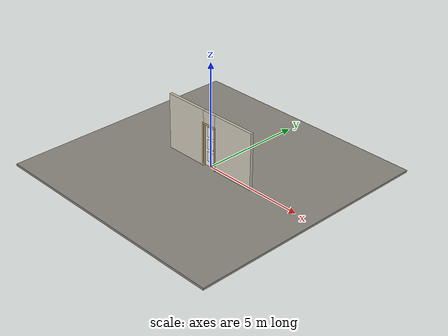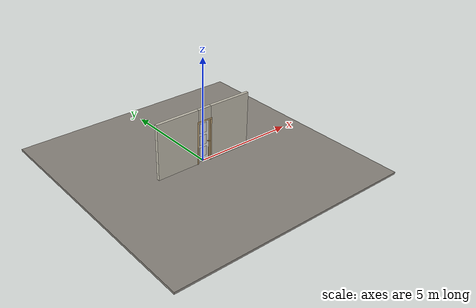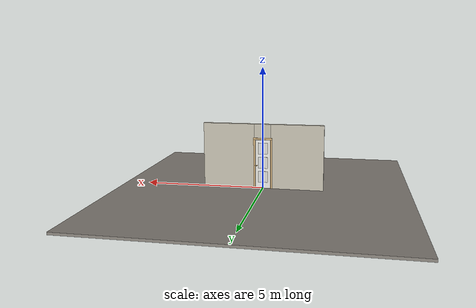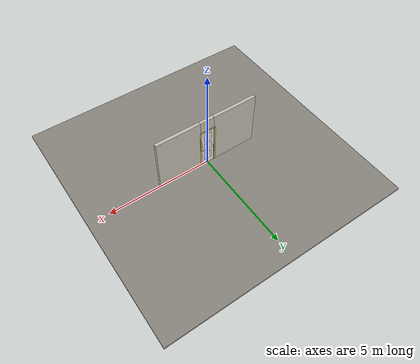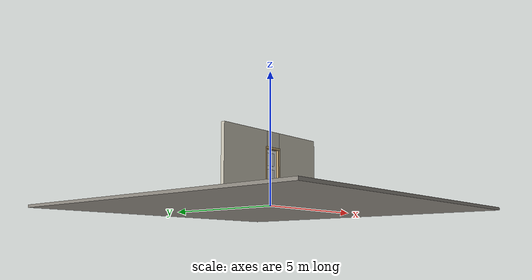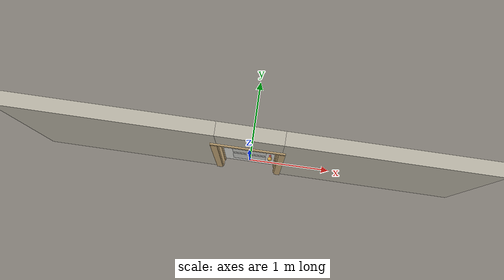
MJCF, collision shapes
<?xml version="1.0" ?>
<mujoco model="db0798_swing_single_full">
  <compiler angle="radian" meshdir="../../hardware" texturedir="../../textures" autolimits="true" inertiafromgeom="false"/>
  <option timestep="0.002" integrator="implicitfast" cone="elliptic" impratio="10" noslip_iterations="3">
    <flag multiccd="enable"/>
  </option>
  <size memory="16M"/>
  <default>
    <geom condim="4" solref="0.005 1" solimp="0.95 0.99 0.001"/>
    <joint solreflimit="0.005 1" solimplimit="0.95 0.99 0.001"/>
    <tendon solreflimit="0.005 1"/>
    <equality solref="0.002 1"/>
  </default>
  <visual>
    <headlight ambient="0.4 0.4 0.4" diffuse="0.7 0.7 0.7" specular="0.2 0.2 0.2"/>
    <quality shadowsize="4096"/>
    <map znear="0.01" zfar="60"/>
  </visual>
  <asset>
    <mesh name="hinge_e3fd49fe13" file="hinge_e3fd49fe13.obj"/>
    <mesh name="hinge_jamb_e47eb19c39" file="hinge_jamb_e47eb19c39.obj"/>
    <mesh name="knob_d1888f6f03" file="knob_d1888f6f03.obj"/>
    <material name="mat_floor" rgba="0.55 0.53 0.5 1" specular="0.2" shininess="0.15" reflectance="0"/>
    <material name="mat_wall" rgba="0.78 0.76 0.7 1" specular="0.2" shininess="0.1" reflectance="0"/>
    <material name="mat_leaf" rgba="0.93 0.93 0.91 1" specular="0.2" shininess="0.39" reflectance="0"/>
    <material name="mat_leaf_panel" rgba="0.856 0.856 0.837 1" specular="0.2" shininess="0.39" reflectance="0"/>
    <material name="mat_hinge" rgba="0.65 0.66 0.68 1" specular="0.74" shininess="0.5" reflectance="0.36"/>
    <material name="mat_op_brass" rgba="0.85 0.66 0.3 1" specular="0.8" shininess="0.75" reflectance="0.4"/>
    <material name="mat_trim" rgba="0.85 0.66 0.3 1" specular="0.8" shininess="0.75" reflectance="0.4"/>
    <material name="mat_bolt" rgba="0.85 0.66 0.3 1" specular="0.8" shininess="0.75" reflectance="0.4"/>
    <material name="mat_frame" rgba="0.82 0.7 0.5 1" specular="0.2" shininess="0.45" reflectance="0"/>
    <texture name="skybox" type="skybox" builtin="gradient" rgb1="0.6 0.7 0.85" rgb2="0.9 0.92 0.95" width="256" height="256"/>
  </asset>
  <worldbody>
    <light name="sun" pos="1.5 -2.5 4" dir="-0.3 0.5 -0.8" directional="true" diffuse="0.8 0.8 0.8" specular="0.3 0.3 0.3" castshadow="true"/>
    <light name="fill" pos="-1.5 2.5 3" dir="0.3 -0.5 -0.7" directional="true" diffuse="0.35 0.35 0.4" castshadow="false"/>
    <camera name="robot_view" pos="0 -2.590187 1.734312" xyaxes="1 0 0 0 0.26963 0.962964" fovy="52"/>
    <camera name="far_view" pos="0 2.494187 1.734312" xyaxes="-1 0 0 0 -0.26963 0.962964" fovy="52"/>
    <camera name="iso" pos="1.932062 -2.183438 2.141063" xyaxes="0.741536 0.670913 0 -0.242917 0.268487 0.932151" fovy="46"/>
    <camera name="detail_handle" pos="0.4245 -0.864 1.245" xyaxes="0.97561 0.219512 0 -0.070934 0.315262 0.94635" fovy="38"/>
    <geom name="floor" type="box" size="6 6 0.05" pos="0 0 -0.05" material="mat_floor" group="0" contype="1" conaffinity="1" friction="0.8 0.005 0.0001" density="2400"/>
    <geom name="wall_left" type="box" size="1.08625 0.0725 1.35" pos="-1.41375 -0.048 1.35" material="mat_wall" group="0" contype="1" conaffinity="1" friction="0.6 0.005 0.0001" density="800"/>
    <geom name="wall_right" type="box" size="1.07125 0.0725 1.35" pos="1.42875 -0.048 1.35" material="mat_wall" group="0" contype="1" conaffinity="1" friction="0.6 0.005 0.0001" density="800"/>
    <geom name="wall_header" type="box" size="0.3425 0.0725 0.303" pos="0.015 -0.048 2.397" material="mat_wall" group="0" contype="1" conaffinity="1" friction="0.6 0.005 0.0001" density="800"/>
    <geom name="hinge_0_jamb" type="mesh" mesh="hinge_jamb_e47eb19c39" pos="-0.3055 0.0245 0.259" quat="0 1 0 0" material="mat_hinge" group="1" contype="0" conaffinity="0" density="7850"/>
    <geom name="hinge_1_jamb" type="mesh" mesh="hinge_jamb_e47eb19c39" pos="-0.3055 0.0245 1.861" quat="0 1 0 0" material="mat_hinge" group="1" contype="0" conaffinity="0" density="7850"/>
    <geom name="jamb_hinge" type="box" size="0.0095 0.0725 1.0225" pos="-0.318 -0.048 1.0225" material="mat_frame" group="0" contype="1" conaffinity="1" friction="0.6 0.005 0.0001" density="400"/>
    <geom name="strike_965_wall_n" type="box" size="0.0245 0.056325 0.0167" pos="0.333 -0.064175 0.965" material="mat_frame" group="0" contype="1" conaffinity="1" friction="0.6 0.005 0.0001" density="400"/>
    <geom name="strike_965_wall_p" type="box" size="0.0245 0.008 0.0167" pos="0.333 0.01585 0.965" material="mat_frame" group="0" contype="1" conaffinity="1" friction="0.6 0.005 0.0001" density="400"/>
    <geom name="strike_965_ramp" type="box" size="0.0245 0.01649 0.0167" pos="0.337636 0.028673 0.965" quat="0.977148 0 0 -0.212558" material="mat_frame" group="0" contype="1" conaffinity="1" friction="0.12 0.005 0.0001" density="400"/>
    <geom name="strike_965_back" type="box" size="0.01615 0.00785 0.0167" pos="0.34135 0 0.965" material="mat_frame" group="0" contype="1" conaffinity="1" friction="0.6 0.005 0.0001" density="400"/>
    <geom name="jamb_strike_0" type="box" size="0.0245 0.0725 0.47415" pos="0.333 -0.048 0.47415" material="mat_frame" group="0" contype="1" conaffinity="1" friction="0.6 0.005 0.0001" density="400"/>
    <geom name="jamb_strike_1" type="box" size="0.0245 0.0725 0.53165" pos="0.333 -0.048 1.51335" material="mat_frame" group="0" contype="1" conaffinity="1" friction="0.6 0.005 0.0001" density="400"/>
    <geom name="jamb_head" type="box" size="0.3425 0.0725 0.0095" pos="0.015 -0.048 2.0545" material="mat_frame" group="0" contype="1" conaffinity="1" friction="0.6 0.005 0.0001" density="400"/>
    <geom name="head_stud" type="box" size="0.3425 0.0725 0.015" pos="0.015 -0.048 2.079" material="mat_wall" group="0" contype="1" conaffinity="1" friction="0.6 0.005 0.0001" density="500"/>
    <geom name="stop_hinge" type="box" size="0.0055 0.016 1.0225" pos="-0.303 -0.034 1.0225" material="mat_frame" group="0" contype="1" conaffinity="1" friction="0.6 0.005 0.0001" density="400"/>
    <geom name="stop_strike" type="box" size="0.0055 0.016 1.0225" pos="0.303 -0.034 1.0225" material="mat_frame" group="0" contype="1" conaffinity="1" friction="0.6 0.005 0.0001" density="400"/>
    <geom name="stop_head" type="box" size="0.3085 0.016 0.0055" pos="0 -0.034 2.0395" material="mat_frame" group="0" contype="1" conaffinity="1" friction="0.6 0.005 0.0001" density="400"/>
    <geom name="casing_l_n" type="box" size="0.035 0.008 1.032" pos="-0.3575 -0.1285 1.0225" material="mat_frame" group="2" contype="0" conaffinity="0" density="400"/>
    <geom name="casing_r_n" type="box" size="0.035 0.008 1.032" pos="0.3575 -0.1285 1.0225" material="mat_frame" group="2" contype="0" conaffinity="0" density="400"/>
    <geom name="casing_h_n" type="box" size="0.3925 0.008 0.035" pos="0 -0.1285 2.094" material="mat_frame" group="2" contype="0" conaffinity="0" density="400"/>
    <geom name="casing_l_p" type="box" size="0.035 0.008 1.032" pos="-0.3575 0.0325 1.0225" material="mat_frame" group="2" contype="0" conaffinity="0" density="400"/>
    <geom name="casing_r_p" type="box" size="0.035 0.008 1.032" pos="0.3575 0.0325 1.0225" material="mat_frame" group="2" contype="0" conaffinity="0" density="400"/>
    <geom name="casing_h_p" type="box" size="0.3925 0.008 0.035" pos="0 0.0325 2.094" material="mat_frame" group="2" contype="0" conaffinity="0" density="400"/>
    <site name="approach_point" pos="0 -1.5 0" quat="1 0 0 0" size="0.05" rgba="0.2 0.9 0.2 0.5" group="4"/>
    <site name="goal_point" pos="0 1.5 0" quat="1 0 0 0" size="0.05" rgba="0.2 0.9 0.2 0.5" group="4"/>
    <site name="door_plane_center" pos="0 0 1.0225" quat="1 0 0 0" size="0.02" rgba="0.2 0.9 0.2 0.5" group="4"/>
    <body name="leaf" pos="-0.3085 0 0">
      <inertial pos="0.294203 0.000774 1.026587" mass="9.081519" quat="0.501299 0.497918 -0.502042 0.498729" diaginertia="0.307991601 3.24771842 3.553615961"/>
      <joint name="leaf_hinge" type="hinge" axis="0 0 1" pos="0.003 0.0245 0" limited="true" range="0 1.745329" damping="0.100811" frictionloss="0.14687" armature="0.02"/>
      <geom name="leaf_slab" type="box" size="0.305 0.0175 1.016" pos="0.308 0 1.025" material="mat_leaf" group="0" contype="1" conaffinity="1" friction="0.35 0.005 0.0001" density="1"/>
      <geom name="leaf_panel_0_n" type="box" size="0.195 0.003 0.23448" pos="0.308 -0.0205 0.487" material="mat_leaf_panel" group="1" contype="0" conaffinity="0" density="1"/>
      <geom name="leaf_panel_0_p" type="box" size="0.195 0.003 0.23448" pos="0.308 0.0205 0.487" material="mat_leaf_panel" group="1" contype="0" conaffinity="0" density="1"/>
      <geom name="leaf_panel_1_n" type="box" size="0.195 0.003 0.23448" pos="0.308 -0.0205 1.08596" material="mat_leaf_panel" group="1" contype="0" conaffinity="0" density="1"/>
      <geom name="leaf_panel_1_p" type="box" size="0.195 0.003 0.23448" pos="0.308 0.0205 1.08596" material="mat_leaf_panel" group="1" contype="0" conaffinity="0" density="1"/>
      <geom name="leaf_panel_2_n" type="box" size="0.195 0.003 0.23448" pos="0.308 -0.0205 1.68492" material="mat_leaf_panel" group="1" contype="0" conaffinity="0" density="1"/>
      <geom name="leaf_panel_2_p" type="box" size="0.195 0.003 0.23448" pos="0.308 0.0205 1.68492" material="mat_leaf_panel" group="1" contype="0" conaffinity="0" density="1"/>
      <geom name="hinge_0" type="mesh" mesh="hinge_e3fd49fe13" pos="0.003 0.0245 0.259" quat="0 1 0 0" material="mat_hinge" group="1" contype="0" conaffinity="0" density="7850"/>
      <geom name="hinge_1" type="mesh" mesh="hinge_e3fd49fe13" pos="0.003 0.0245 1.861" quat="0 1 0 0" material="mat_hinge" group="1" contype="0" conaffinity="0" density="7850"/>
      <geom name="leaf_latch_bolt_faceplate" type="box" size="0.0006 0.01235 0.0267" pos="0.6124 0 0.965" material="mat_bolt" group="1" contype="0" conaffinity="0" density="8500"/>
      <site name="leaf_edge_mid" pos="0.613 0 1.016" quat="1 0 0 0" size="0.02" rgba="0.2 0.9 0.2 0.5" group="4"/>
      <body name="leaf_handle" pos="0.553 0 0.965">
        <inertial pos="0 0 0" mass="1.143961" quat="-0.5 0.5 -0.5 0.5" diaginertia="0.00031237 0.003706292 0.003706292"/>
        <joint name="leaf_handle_hinge" type="hinge" axis="0 -1 0" limited="true" range="0 0.87" damping="0.143613" frictionloss="0.038" stiffness="0.5" springref="-0.5" armature="0.01"/>
        <geom name="leaf_handle_spindle" type="cylinder" size="0.006 0.0255" pos="0 0 0" quat="0.707107 -0.707107 0 0" material="mat_op_brass" group="1" contype="0" conaffinity="0" density="7850"/>
        <geom name="leaf_handle_knob_n" type="mesh" mesh="knob_d1888f6f03" pos="0 -0.0175 0" quat="0.707107 0.707107 0 0" material="mat_op_brass" group="1" contype="0" conaffinity="0" density="3000"/>
        <geom name="leaf_handle_knob_col_n" type="sphere" size="0.0243" pos="0 -0.064 0" material="mat_op_brass" group="0" contype="1" conaffinity="1" friction="0.9 0.01 0.0001" density="3000"/>
        <geom name="leaf_handle_knob_neck_n" type="cylinder" size="0.011 0.012" pos="0 -0.0295 0" quat="0.707107 -0.707107 0 0" material="mat_op_brass" group="3" contype="1" conaffinity="1" rgba="0.8 0.3 0.3 0.25" friction="0.6 0.005 0.0001" density="3000"/>
        <geom name="leaf_handle_knob_p" type="mesh" mesh="knob_d1888f6f03" pos="0 0.0175 0" quat="-0.707107 0.707107 0 0" material="mat_op_brass" group="1" contype="0" conaffinity="0" density="3000"/>
        <geom name="leaf_handle_knob_col_p" type="sphere" size="0.0243" pos="0 0.064 0" material="mat_op_brass" group="0" contype="1" conaffinity="1" friction="0.9 0.01 0.0001" density="3000"/>
        <geom name="leaf_handle_knob_neck_p" type="cylinder" size="0.011 0.012" pos="0 0.0295 0" quat="0.707107 -0.707107 0 0" material="mat_op_brass" group="3" contype="1" conaffinity="1" rgba="0.8 0.3 0.3 0.25" friction="0.6 0.005 0.0001" density="3000"/>
        <site name="leaf_handle_grip_n" pos="0 -0.064 0" quat="1 0 0 0" size="0.012" rgba="0.2 0.9 0.2 0.5" group="4"/>
        <site name="leaf_handle_grip_p" pos="0 0.064 0" quat="1 0 0 0" size="0.012" rgba="0.2 0.9 0.2 0.5" group="4"/>
      </body>
      <body name="leaf_latch_bolt" pos="0.613 0 0.965">
        <inertial pos="-0.00865 0 0" mass="0.041419" quat="0.92388 -0.382683 0 0" diaginertia="0.000000798 0.000005598 0.000005598"/>
        <joint name="leaf_latch_bolt_slide" type="slide" axis="-1 0 0" limited="true" range="0 0.0127" damping="2" frictionloss="0.3" stiffness="300" springref="-0.008333" armature="0.1"/>
        <geom name="leaf_latch_bolt_capsule" type="capsule" size="0.00635 0.015" pos="-0.00865 0 0" quat="0.707107 0 0.707107 0" material="mat_bolt" group="0" contype="1" conaffinity="1" friction="0.2 0.005 0.0001" density="8500"/>
      </body>
    </body>
  </worldbody>
  <tendon>
    <fixed name="leaf_latch_bolt_coupling" limited="true" range="0 10">
      <joint joint="leaf_latch_bolt_slide" coef="1"/>
      <joint joint="leaf_handle_hinge" coef="-0.015679"/>
    </fixed>
  </tendon>
  <sensor>
    <jointpos name="leaf_hinge_pos" joint="leaf_hinge"/>
    <jointvel name="leaf_hinge_vel" joint="leaf_hinge"/>
    <jointpos name="leaf_handle_hinge_pos" joint="leaf_handle_hinge"/>
    <jointvel name="leaf_handle_hinge_vel" joint="leaf_handle_hinge"/>
    <jointpos name="leaf_latch_bolt_slide_pos" joint="leaf_latch_bolt_slide"/>
    <jointvel name="leaf_latch_bolt_slide_vel" joint="leaf_latch_bolt_slide"/>
  </sensor>
</mujoco>
